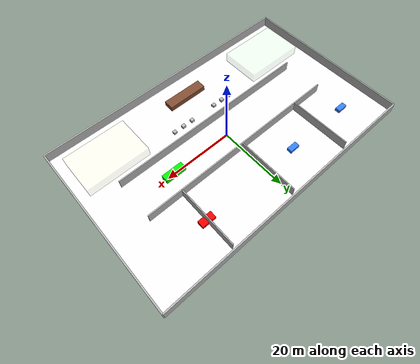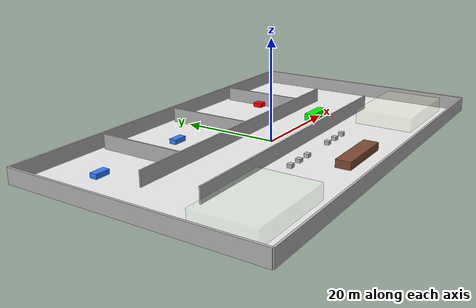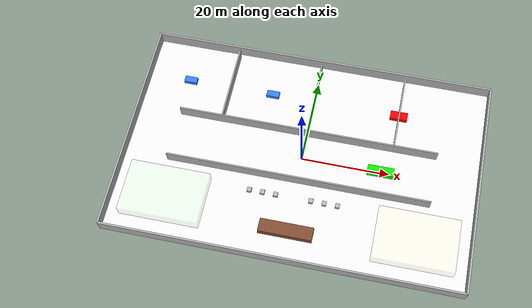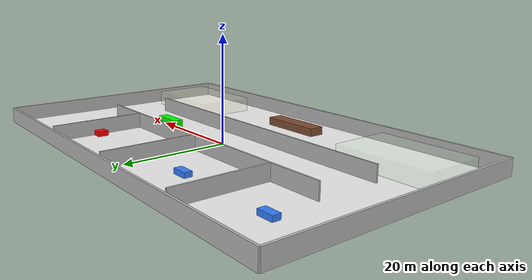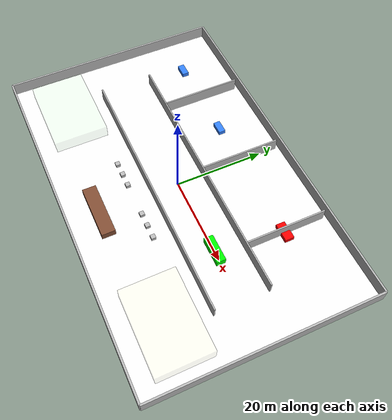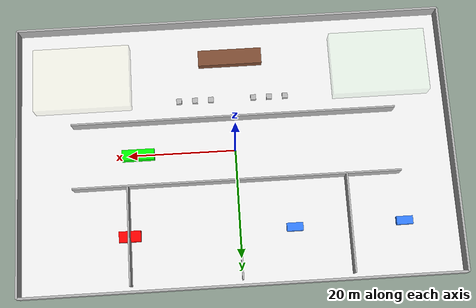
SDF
<?xml version="1.0" ?>
<sdf version="1.7">

<world name="advanced_hospital">

  <!-- LIGHT -->
  <light name="sun" type="directional">
    <cast_shadows>true</cast_shadows>
    <pose>0 0 20 0 0 0</pose>
    <diffuse>1 1 1 1</diffuse>
    <specular>0.2 0.2 0.2 1</specular>
    <direction>-0.5 0.1 -1</direction>
  </light>

  <!-- FLOOR -->
  <model name="floor">
    <static>true</static>

    <link name="link">

      <collision name="collision">
        <geometry>
          <box>
            <size>80 50 0.1</size>
          </box>
        </geometry>
      </collision>

      <visual name="visual">

        <geometry>
          <box>
            <size>80 50 0.1</size>
          </box>
        </geometry>

        <material>
          <ambient>0.95 0.95 0.95 1</ambient>
        </material>

      </visual>

    </link>
  </model>

  <!-- OUTER WALLS -->

  <model name="top_wall">
    <static>true</static>
    <pose>0 25 1.5 0 0 0</pose>

    <link name="link">
      <collision name="collision">
        <geometry>
          <box>
            <size>80 0.4 3</size>
          </box>
        </geometry>
      </collision>

      <visual name="visual">
        <geometry>
          <box>
            <size>80 0.4 3</size>
          </box>
        </geometry>
      </visual>
    </link>
  </model>

  <model name="bottom_wall">
    <static>true</static>
    <pose>0 -25 1.5 0 0 0</pose>

    <link name="link">
      <collision name="collision">
        <geometry>
          <box>
            <size>80 0.4 3</size>
          </box>
        </geometry>
      </collision>

      <visual name="visual">
        <geometry>
          <box>
            <size>80 0.4 3</size>
          </box>
        </geometry>
      </visual>
    </link>
  </model>

  <model name="left_wall">
    <static>true</static>
    <pose>-40 0 1.5 0 0 1.57</pose>

    <link name="link">
      <collision name="collision">
        <geometry>
          <box>
            <size>50 0.4 3</size>
          </box>
        </geometry>
      </collision>

      <visual name="visual">
        <geometry>
          <box>
            <size>50 0.4 3</size>
          </box>
        </geometry>
      </visual>
    </link>
  </model>

  <model name="right_wall">
    <static>true</static>
    <pose>40 0 1.5 0 0 1.57</pose>

    <link name="link">
      <collision name="collision">
        <geometry>
          <box>
            <size>50 0.4 3</size>
          </box>
        </geometry>
      </collision>

      <visual name="visual">
        <geometry>
          <box>
            <size>50 0.4 3</size>
          </box>
        </geometry>
      </visual>
    </link>
  </model>

  <!-- MAIN CORRIDOR -->

  <model name="corridor_top">
    <static>true</static>
    <pose>0 6 1.5 0 0 0</pose>

    <link name="link">

      <collision name="collision">
        <geometry>
          <box>
            <size>60 0.3 3</size>
          </box>
        </geometry>
      </collision>

      <visual name="visual">
        <geometry>
          <box>
            <size>60 0.3 3</size>
          </box>
        </geometry>
      </visual>

    </link>
  </model>

  <model name="corridor_bottom">
    <static>true</static>
    <pose>0 -6 1.5 0 0 0</pose>

    <link name="link">

      <collision name="collision">
        <geometry>
          <box>
            <size>60 0.3 3</size>
          </box>
        </geometry>
      </collision>

      <visual name="visual">
        <geometry>
          <box>
            <size>60 0.3 3</size>
          </box>
        </geometry>
      </visual>

    </link>
  </model>

  <!-- PATIENT ROOM 1 -->

  <model name="room1_divider">
    <static>true</static>
    <pose>-20 15 1.5 0 0 1.57</pose>

    <link name="link">

      <collision name="collision">
        <geometry>
          <box>
            <size>18 0.3 3</size>
          </box>
        </geometry>
      </collision>

      <visual name="visual">
        <geometry>
          <box>
            <size>18 0.3 3</size>
          </box>
        </geometry>
      </visual>

    </link>
  </model>

  <!-- PATIENT ROOM 2 -->

  <model name="room2_divider">
    <static>true</static>
    <pose>0 15 1.5 0 0 1.57</pose>

    <link name="link">

      <collision name="collision">
        <geometry>
          <box>
            <size>18 0.3 3</size>
          </box>
        </geometry>
      </collision>

      <visual name="visual">
        <geometry>
          <box>
            <size>18 0.3 3</size>
          </box>
        </geometry>
      </visual>

    </link>
  </model>

  <!-- ICU ROOM -->

  <model name="icu_divider">
    <static>true</static>
    <pose>20 15 1.5 0 0 1.57</pose>

    <link name="link">

      <collision name="collision">
        <geometry>
          <box>
            <size>18 0.3 3</size>
          </box>
        </geometry>
      </collision>

      <visual name="visual">
        <geometry>
          <box>
            <size>18 0.3 3</size>
          </box>
        </geometry>
      </visual>

    </link>
  </model>

  <!-- OPERATION THEATER -->

  <model name="operation_room">
    <static>true</static>
    <pose>-28 -15 1.5 0 0 0</pose>

    <link name="link">

      <collision name="collision">
        <geometry>
          <box>
            <size>18 12 3</size>
          </box>
        </geometry>
      </collision>

      <visual name="visual">

        <geometry>
          <box>
            <size>18 12 3</size>
          </box>
        </geometry>

        <material>
          <ambient>0.8 1 0.8 0.2</ambient>
        </material>

      </visual>

    </link>
  </model>

  <!-- MEDICINE ROOM -->

  <model name="medicine_room">
    <static>true</static>
    <pose>28 -15 1.5 0 0 0</pose>

    <link name="link">

      <collision name="collision">
        <geometry>
          <box>
            <size>18 12 3</size>
          </box>
        </geometry>
      </collision>

      <visual name="visual">

        <geometry>
          <box>
            <size>18 12 3</size>
          </box>
        </geometry>

        <material>
          <ambient>1 1 0.8 0.2</ambient>
        </material>

      </visual>

    </link>
  </model>

  <!-- RECEPTION -->

  <model name="reception">
    <static>true</static>
    <pose>0 -18 0.8 0 0 0</pose>

    <link name="link">

      <collision name="collision">
        <geometry>
          <box>
            <size>12 3 1.6</size>
          </box>
        </geometry>
      </collision>

      <visual name="visual">

        <geometry>
          <box>
            <size>12 3 1.6</size>
          </box>
        </geometry>

        <material>
          <ambient>0.5 0.3 0.2 1</ambient>
        </material>

      </visual>

    </link>
  </model>

  <!-- WAITING AREA CHAIRS -->

  <!-- ROW 1 -->
  <model name="chair1">
    <static>true</static>
    <pose>-10 -10 0.4 0 0 0</pose>
    <link name="link">
      <visual name="visual">
        <geometry>
          <box>
            <size>1 1 0.8</size>
          </box>
        </geometry>
      </visual>
    </link>
  </model>

  <model name="chair2">
    <static>true</static>
    <pose>-7 -10 0.4 0 0 0</pose>
    <link name="link">
      <visual name="visual">
        <geometry>
          <box>
            <size>1 1 0.8</size>
          </box>
        </geometry>
      </visual>
    </link>
  </model>

  <model name="chair3">
    <static>true</static>
    <pose>-4 -10 0.4 0 0 0</pose>
    <link name="link">
      <visual name="visual">
        <geometry>
          <box>
            <size>1 1 0.8</size>
          </box>
        </geometry>
      </visual>
    </link>
  </model>

  <model name="chair4">
    <static>true</static>
    <pose>4 -10 0.4 0 0 0</pose>
    <link name="link">
      <visual name="visual">
        <geometry>
          <box>
            <size>1 1 0.8</size>
          </box>
        </geometry>
      </visual>
    </link>
  </model>

  <model name="chair5">
    <static>true</static>
    <pose>7 -10 0.4 0 0 0</pose>
    <link name="link">
      <visual name="visual">
        <geometry>
          <box>
            <size>1 1 0.8</size>
          </box>
        </geometry>
      </visual>
    </link>
  </model>

  <model name="chair6">
    <static>true</static>
    <pose>10 -10 0.4 0 0 0</pose>
    <link name="link">
      <visual name="visual">
        <geometry>
          <box>
            <size>1 1 0.8</size>
          </box>
        </geometry>
      </visual>
    </link>
  </model>

  <!-- PATIENT BEDS -->

  <model name="bed1">
    <static>true</static>
    <pose>-30 15 0.5 0 0 0</pose>

    <link name="link">
      <collision name="collision">
        <geometry>
          <box>
            <size>3 1.5 1</size>
          </box>
        </geometry>
      </collision>

      <visual name="visual">
        <geometry>
          <box>
            <size>3 1.5 1</size>
          </box>
        </geometry>

        <material>
          <ambient>0.2 0.5 1 1</ambient>
        </material>
      </visual>
    </link>
  </model>

  <model name="bed2">
    <static>true</static>
    <pose>-10 15 0.5 0 0 0</pose>

    <link name="link">
      <collision name="collision">
        <geometry>
          <box>
            <size>3 1.5 1</size>
          </box>
        </geometry>
      </collision>

      <visual name="visual">
        <geometry>
          <box>
            <size>3 1.5 1</size>
          </box>
        </geometry>

        <material>
          <ambient>0.2 0.5 1 1</ambient>
        </material>
      </visual>
    </link>
  </model>

  <model name="icu_bed">
    <static>true</static>
    <pose>20 15 0.5 0 0 0</pose>

    <link name="link">
      <collision name="collision">
        <geometry>
          <box>
            <size>4 2 1</size>
          </box>
        </geometry>
      </collision>

      <visual name="visual">
        <geometry>
          <box>
            <size>4 2 1</size>
          </box>
        </geometry>

        <material>
          <ambient>1 0 0 1</ambient>
        </material>
      </visual>
    </link>
  </model>

  <!-- NURSE STATION -->

  <model name="nurse_station">
    <static>true</static>
    <pose>18 0 0.8 0 0 0</pose>

    <link name="link">

      <collision name="collision">
        <geometry>
          <box>
            <size>6 2 1.5</size>
          </box>
        </geometry>
      </collision>

      <visual name="visual">

        <geometry>
          <box>
            <size>6 2 1.5</size>
          </box>
        </geometry>

        <material>
          <ambient>0 1 0 1</ambient>
        </material>

      </visual>

    </link>
  </model>

</world>
</sdf>
